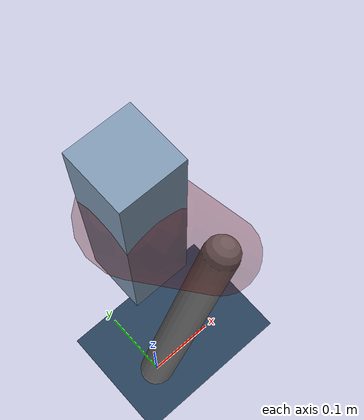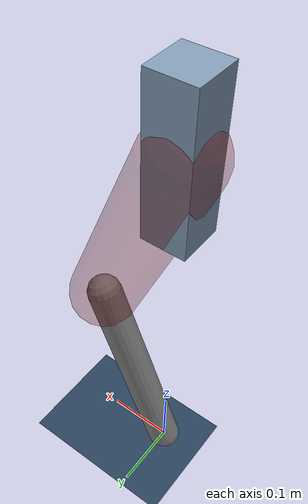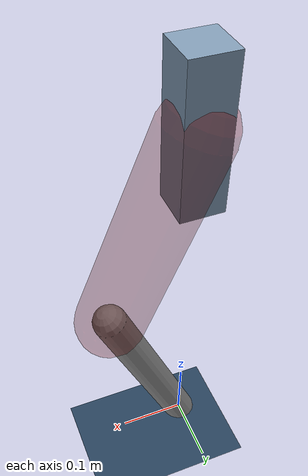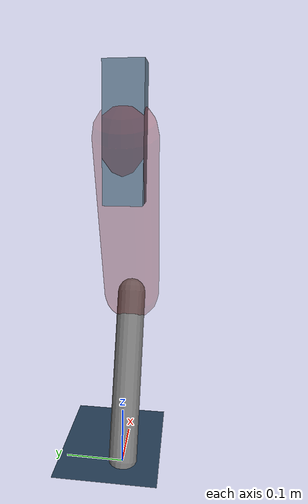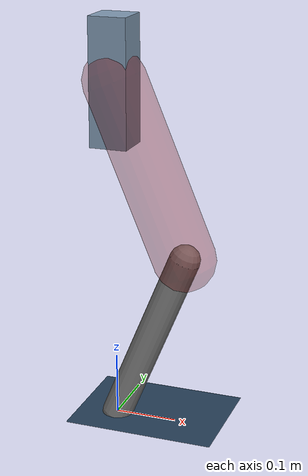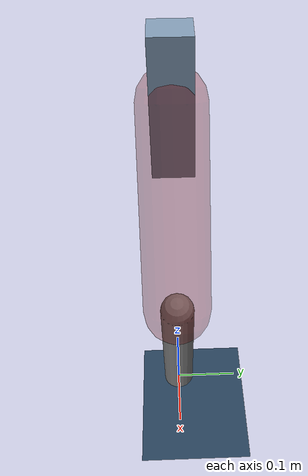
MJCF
<mujoco model="Hopper2D">
	<compiler inertiafromgeom="true" angle="radian" />
	<option timestep="0.001" integrator="implicit" cone="elliptic" solver="Newton" tolerance="1e-10" />

	<default>
		<geom contype="1" conaffinity="1" condim="3" friction="2 0.005 0.0001" solref="0.005 1" />
		<joint limited="true" damping="0.1" />
	</default>

	<asset>
		<texture name="skybox" type="skybox" builtin="gradient" rgb1=".4 .6 .8" rgb2="0 0 0" width="800" height="800" />
		<texture name="grid" type="2d" builtin="checker" rgb1=".1 .2 .3" rgb2=".2 .3 .4" width="300" height="300" mark="edge" markrgb=".2 .3 .4" />
		<material name="ground" texture="grid" texrepeat="1 1" texuniform="true" reflectance="0.1" />
		<material name="leg" rgba="0.5 0.6 0.7 1" />
	</asset>

	<worldbody>

		<geom name="floor" type="plane" size="5 5 0.25" material="ground" />

		<light directional="false" diffuse="0.8 0.8 0.8" specular="0.3 0.3 0.3" pos="0 0 2" dir="0 0 -1" />
		<light mode="targetbodycom" target="base" directional="false" diffuse="0.8 0.8 0.8" specular="0.3 0.3 0.3" pos="0 0 2" dir="0 0 -1" />

		<camera name="fixed" pos="0 -2 1" xyaxes="1 0 0 0 0 1" />
		<camera name="tracking" mode="trackcom" pos="0 -3 1" />

		<body name="root" pos="0 0 0.5550670392996051">
			<joint name="slide_x" type="slide" axis="1 0 0" range="-100 100" />
			<joint name="slide_z" type="slide" axis="0 0 1" range="0 10" />

			<body name="base" pos="0 0 0">
				<geom name="torso" type="box" size="0.03 0.03 0.1" mass="2.4699999999999998" material="leg" />

				<body name="link1" pos="0 0 0" euler="0 1.1747384377766645 0">
					<joint type="hinge" axis="0 -1 0" pos="0 0 0" name="hinge1" limited="true" range="-3.14 3.14" stiffness="0" damping="0.1" />
					<geom name="thigh" type="capsule" fromto="0 0 0 0.2975138944956569 0 0" size="0.05" rgba="0.5 0 0 0.3" mass="0.9819875151382736" />

					<body name="link2" pos="0.2975138944956569 0 0" euler="0 0.7843517382776716 0">
						<joint type="hinge" axis="0 -1 0" pos="0 0 0" name="hinge2" limited="true" range="-3.14 3.14" stiffness="0" damping="0.1" />
						<geom name="shank" type="capsule" fromto="0 0 0 0.30315171736092905 0 0" size="0.025" mass="0.4860213738887432" />

					</body>
				</body>
			</body>
		</body>
	</worldbody>

	<actuator>
		<motor name="torque1" joint="hinge1" ctrlrange="-108.75810105466608 108.75810105466608" ctrllimited="true" gear="1" />
		<motor name="torque2" joint="hinge2" ctrlrange="-40.379536749778026 40.379536749778026" ctrllimited="true" gear="1" />
	</actuator>
</mujoco>
